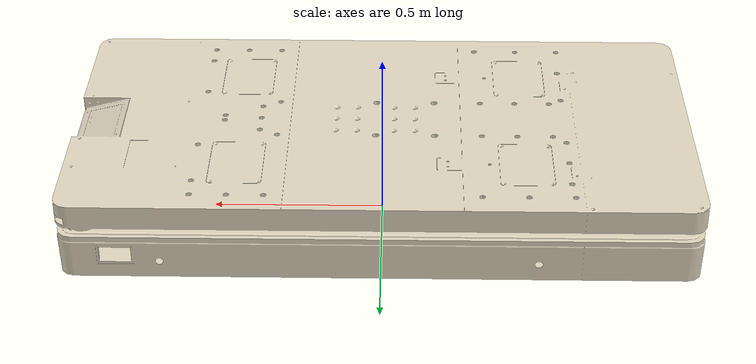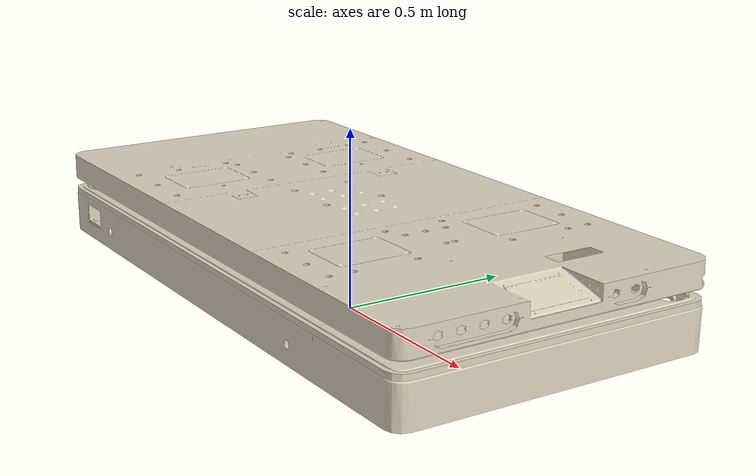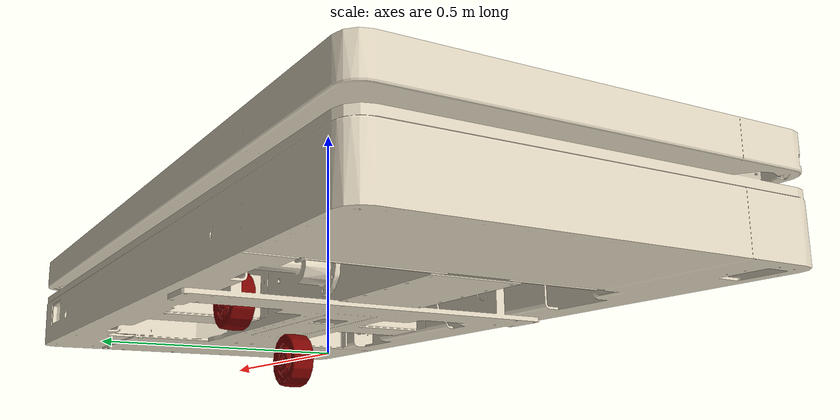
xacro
<?xml version="1.0" encoding="utf-8"?>
<robot
  name="hamal">
  <link name="base_link">
    <visual>
      <origin
        xyz="0 0 0.045"
        rpy="0 0 0" />
      <geometry>
        <mesh
          filename="package://hamal_description/mesh/logos_maxi_base.stl" scale="0.001 0.001 0.001"/>
      </geometry>
      <collision>
       <origin
        xyz="0 0 0"
        rpy="0 0 0" />
      <geometry>
        <mesh
          filename="package://hamal_description/mesh/logos_maxi_base.stl" scale="0.001 0.001 0.001"/>
      </geometry>
      </collision>
      <material
        name="white">
      </material>
    </visual>
  </link>
  <link
    name="lw_link">
    <visual>
      <origin
        xyz="0 0 0"
        rpy="-1.5707963267949 0 0" />
      <geometry>
        <mesh
          filename="package://hamal_description/mesh/wheel.stl" scale="0.001 0.001 0.001"/>
      </geometry>
      <material
        name="red">
      </material>
    </visual>
  </link>
  <joint
    name="left_wheel_joint"
    type="continuous">
      <origin
      xyz="0 0.225 0.1"
      rpy="0 0 0" />
    <parent
      link="base_link" />
    <child
      link="lw_link" />
    <axis
      xyz="0 1 0" />
    <safety_controller
      k_velocity="0" />
  </joint>
  <link
    name="rw_link">
    <visual>
      <origin
        xyz="0 0 0"
        rpy="1.5707963267949 0 0" />
      <geometry>
        <mesh
          filename="package://hamal_description/mesh/wheel.stl" scale="0.001 0.001 0.001"/>
      </geometry>
      <material
        name="red">
      </material>
    </visual>
  </link>
  <joint
    name="right_wheel_joint"
    type="continuous">
      <origin xyz="0.1769 0 0" rpy="0 3.14 0" />
      <parent
      link="base_link" />
    <child
      link="rw_link" />
    <axis
      xyz="0 1 0" />
    <safety_controller
      k_velocity="0" />
  </joint>
  <link
    name="lifter_link">
  </link>
  <joint
    name="lifter_joint"
    type="continuous">
      <origin
      xyz="0 0 0"
      rpy="0 0 0" />
    <parent
      link="base_link" />
    <child
      link="lifter_link" />
  </joint>

    <material name="black">
      <color rgba="0.007 0.007 0.007 1.0"/>
    </material>

    <material name="red">
      <color rgba="0.49693 0.01298 0.00518 1.0"/>
    </material>

    <material name="white">
      <color rgba="0.87962 0.8388 0.75294 1.0"/>
    </material>

</robot>
